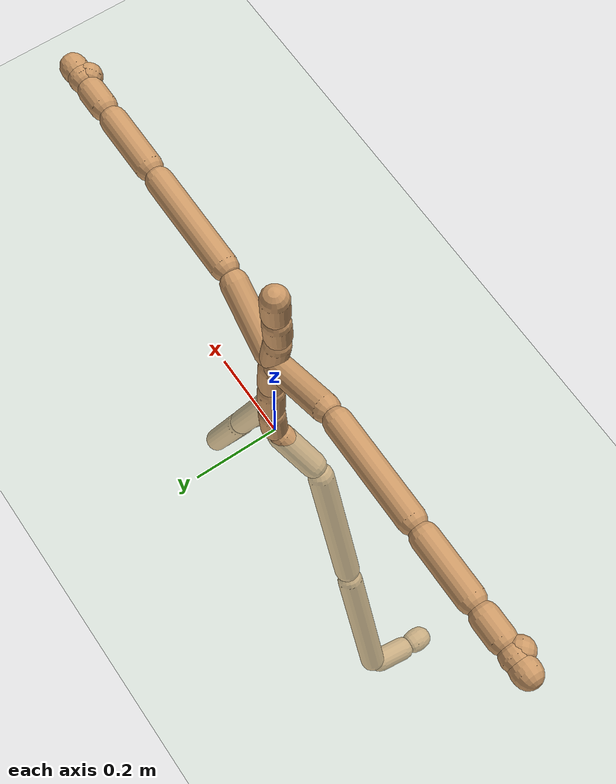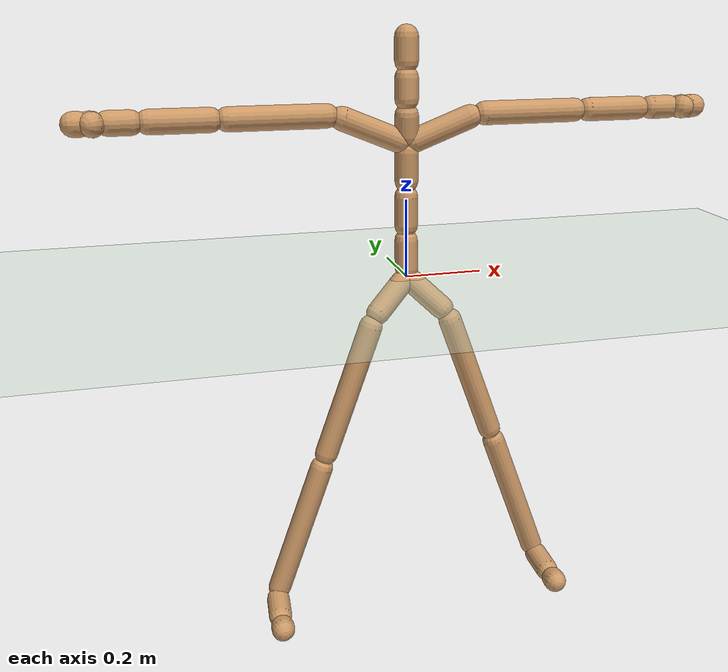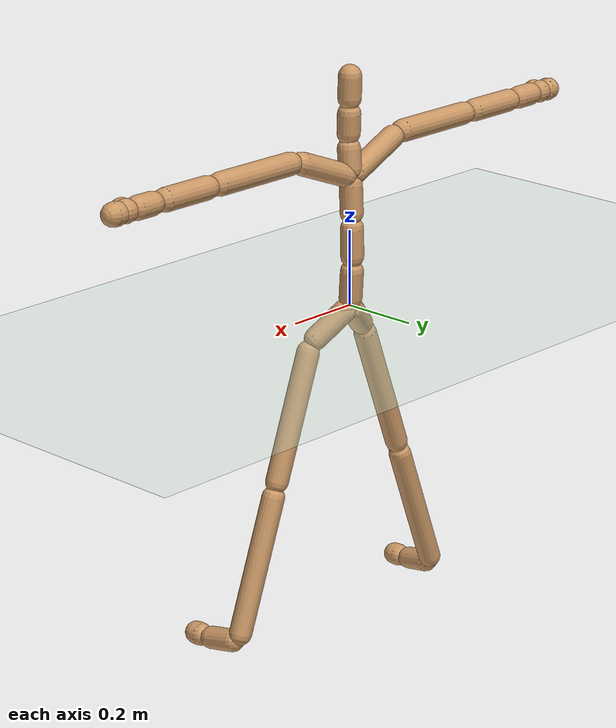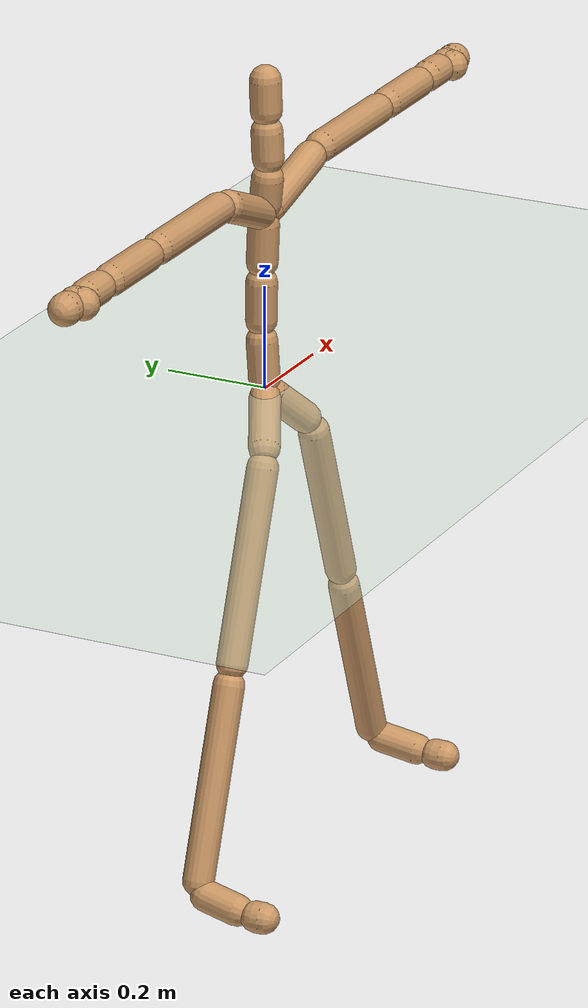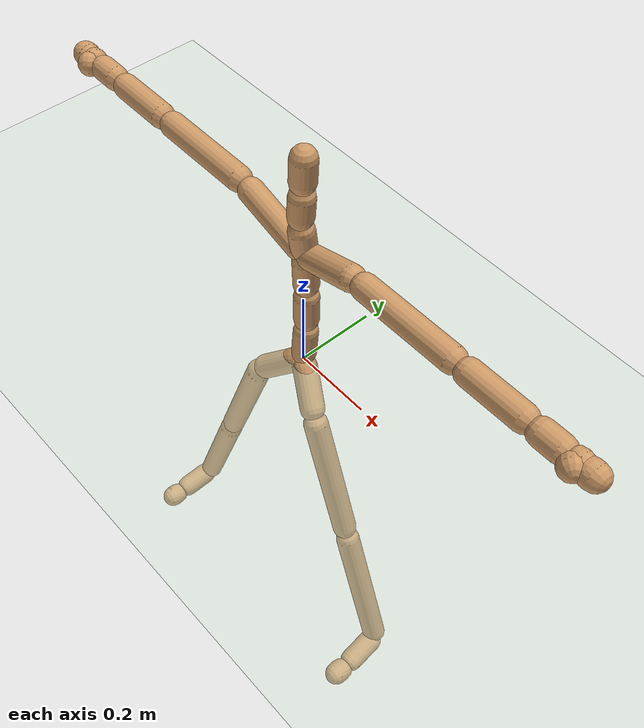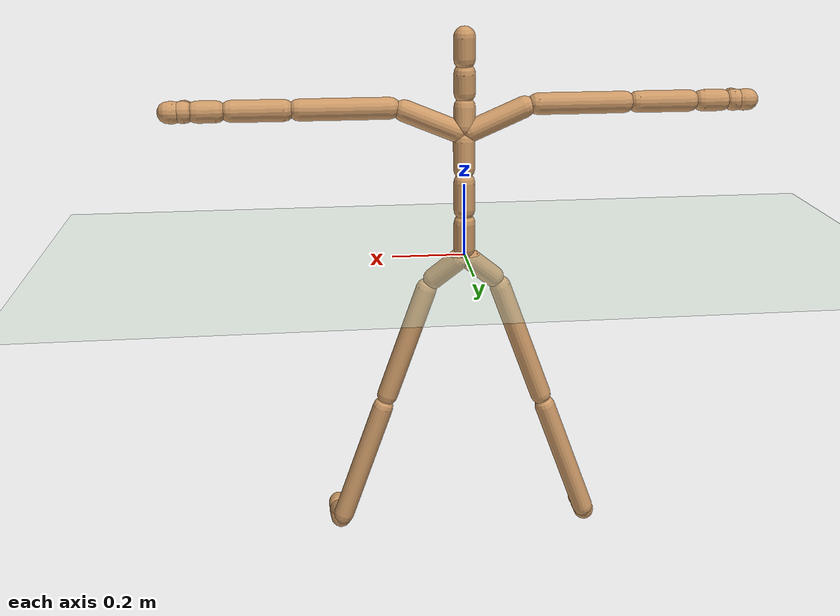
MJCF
<mujoco model="humanoid">
  <compiler angle="degree" inertiafromgeom="true"/>
  <default>
    <joint damping="1" limited="true"/>
    <geom conaffinity="1" condim="1" contype="1" margin="0.001" material="geom" rgba="0.8 0.6 .4 1"/>
    <motor ctrllimited="true" ctrlrange="-.4 .4"/>
  </default>
  <option integrator="RK4" iterations="50" solver="PGS" timestep="0.003"/>
  <asset>
    <texture builtin="gradient" height="100" rgb1=".4 .5 .6" rgb2="0 0 0" type="skybox" width="100"/>
    <texture builtin="flat" height="1278" mark="cross" markrgb="1 1 1" name="texgeom" random="0.01" rgb1=".8 .6 .4" rgb2=".8 .6 .4" type="cube" width="127"/>
    <texture builtin="checker" height="100" name="texplane" rgb1="0 0 0" rgb2=".8 .8 .8" type="2d" width="100"/>
    <material name="MatPlane" reflectance="0.5" shininess="1" specular="1" texrepeat="60 60" texture="texplane"/>
    <material name="geom" texture="texgeom" texuniform="true"/>
  </asset>
  <worldbody>
    <light cutoff="100" diffuse="1 1 1" dir="-0 0 -1.3" directional="true" exponent="1" pos="0 0 1.3" specular=".1 .1 .1"/>
    <geom condim="3" friction="1 .1 .1" material="MatPlane" name="floor" pos="0 0 0" rgba=".8 .9 .8 1" size="20 20 0.125" type="plane"/>
    <body end="0.0000 -0.0000 0.0000" name="root">
      <joint armature="0" damping="0" limited="false" name="root" pos="0.0000 -0.0000 0.0000" stiffness="0" type="free"/>
      <body end="0.0963 -0.0494 -0.0918" name="lhipjoint">
        <geom fromto="0.0136 -0.0070 -0.0129 0.0827 -0.0425 -0.0789" size="0.03" type="capsule"/>
        <body end="0.2274 -0.0494 -0.4521" name="lfemur">
          <joint armature="0.01" axis="0.0000 -1.0000 0.0000" damping="5" limited="true" name="lfemur_z" pos="0.0963 -0.0494 -0.0918" range="-60.0000 70.0000" stiffness="10" type="hinge"/>
          <joint armature="0.01" axis="-0.3420 -0.0000 0.9397" damping="5" limited="true" name="lfemur_y" pos="0.0963 -0.0494 -0.0918" range="-70.0000 70.0000" stiffness="10" type="hinge"/>
          <joint armature="0.01" axis="0.9397 0.0000 0.3420" damping="5" limited="true" name="lfemur_x" pos="0.0963 -0.0494 -0.0918" range="-160.0000 20.0000" stiffness="10" type="hinge"/>
          <geom fromto="0.1031 -0.0494 -0.1106 0.2206 -0.0494 -0.4333" size="0.03" type="capsule"/>
          <body end="0.3657 -0.0494 -0.8321" name="ltibia">
            <joint armature="0.01" axis="0.9397 0.0000 0.3420" damping="5" limited="true" name="ltibia_x" pos="0.2274 -0.0494 -0.4521" range="-10.0000 170.0000" stiffness="10" type="hinge"/>
            <geom fromto="0.2343 -0.0494 -0.4709 0.3589 -0.0494 -0.8133" size="0.03" type="capsule"/>
            <body end="0.3731 -0.1606 -0.8523" name="lfoot">
              <joint armature="0.01" axis="-0.3420 -0.0000 0.9397" damping="5" limited="true" name="lfoot_z" pos="0.3657 -0.0494 -0.8321" range="-70.0000 20.0000" stiffness="10" type="hinge"/>
              <joint armature="0.01" axis="0.9397 0.0000 0.3420" damping="5" limited="true" name="lfoot_x" pos="0.3657 -0.0494 -0.8321" range="-45.0000 90.0000" stiffness="10" type="hinge"/>
              <geom fromto="0.3670 -0.0691 -0.8356 0.3718 -0.1410 -0.8487" size="0.03" type="capsule"/>
              <body end="0.3731 -0.2178 -0.8523" name="ltoes">
                <joint armature="0.01" axis="0.9397 0.0000 0.3420" damping="5" limited="true" name="ltoes_x" pos="0.3731 -0.1606 -0.8523" range="-90.0000 20.0000" stiffness="10" type="hinge"/>
                <geom fromto="0.3731 -0.1806 -0.8523 0.3731 -0.1978 -0.8523" size="0.03" type="capsule"/>
              </body>
            </body>
          </body>
        </body>
      </body>
      <body end="-0.1019 -0.0494 -0.0918" name="rhipjoint">
        <geom fromto="-0.0140 -0.0068 -0.0126 -0.0880 -0.0427 -0.0792" size="0.03" type="capsule"/>
        <body end="-0.2404 -0.0494 -0.4723" name="rfemur">
          <joint armature="0.01" axis="0.0000 -1.0000 -0.0000" damping="5" limited="true" name="rfemur_z" pos="-0.1019 -0.0494 -0.0918" range="-70.0000 60.0000" stiffness="10" type="hinge"/>
          <joint armature="0.01" axis="0.3420 -0.0000 0.9397" damping="5" limited="true" name="rfemur_y" pos="-0.1019 -0.0494 -0.0918" range="-70.0000 70.0000" stiffness="10" type="hinge"/>
          <joint armature="0.01" axis="0.9397 0.0000 -0.3420" damping="5" limited="true" name="rfemur_x" pos="-0.1019 -0.0494 -0.0918" range="-160.0000 20.0000" stiffness="10" type="hinge"/>
          <geom fromto="-0.1088 -0.0494 -0.1106 -0.2336 -0.0494 -0.4535" size="0.03" type="capsule"/>
          <body end="-0.3792 -0.0494 -0.8536" name="rtibia">
            <joint armature="0.01" axis="0.9397 0.0000 -0.3420" damping="5" limited="true" name="rtibia_x" pos="-0.2404 -0.0494 -0.4723" range="-10.0000 170.0000" stiffness="10" type="hinge"/>
            <geom fromto="-0.2473 -0.0494 -0.4911 -0.3724 -0.0494 -0.8348" size="0.03" type="capsule"/>
            <body end="-0.3870 -0.1558 -0.8750" name="rfoot">
              <joint armature="0.01" axis="0.3420 -0.0000 0.9397" damping="5" limited="true" name="rfoot_z" pos="-0.3792 -0.0494 -0.8536" range="-20.0000 70.0000" stiffness="10" type="hinge"/>
              <joint armature="0.01" axis="0.9397 -0.0000 -0.3420" damping="5" limited="true" name="rfoot_x" pos="-0.3792 -0.0494 -0.8536" range="-45.0000 90.0000" stiffness="10" type="hinge"/>
              <geom fromto="-0.3806 -0.0690 -0.8575 -0.3856 -0.1363 -0.8710" size="0.03" type="capsule"/>
              <body end="-0.3870 -0.2107 -0.8750" name="rtoes">
                <joint armature="0.01" axis="0.9397 -0.0000 -0.3420" damping="5" limited="true" name="rtoes_x" pos="-0.3870 -0.1558 -0.8750" range="-90.0000 20.0000" stiffness="10" type="hinge"/>
                <geom fromto="-0.3870 -0.1758 -0.8750 -0.3870 -0.1907 -0.8750" size="0.03" type="capsule"/>
              </body>
            </body>
          </body>
        </body>
      </body>
      <body end="0.0006 0.0081 0.1132" name="lowerback">
        <joint armature="0.01" axis="0.0000 -1.0000 0.0000" damping="5" limited="true" name="lowerback_z" pos="0.0000 -0.0000 0.0000" range="-30.0000 30.0000" stiffness="10" type="hinge"/>
        <joint armature="0.01" axis="0.0000 -0.0000 1.0000" damping="5" limited="true" name="lowerback_y" pos="0.0000 -0.0000 0.0000" range="-30.0000 30.0000" stiffness="10" type="hinge"/>
        <joint armature="0.01" axis="1.0000 0.0000 0.0000" damping="5" limited="true" name="lowerback_x" pos="0.0000 -0.0000 0.0000" range="-20.0000 45.0000" stiffness="10" type="hinge"/>
        <geom fromto="0.0001 0.0014 0.0199 0.0005 0.0066 0.0933" size="0.03" type="capsule"/>
        <body end="0.0011 0.0071 0.2268" name="upperback">
          <joint armature="0.01" axis="0.0000 -1.0000 0.0000" damping="5" limited="true" name="upperback_z" pos="0.0006 0.0081 0.1132" range="-30.0000 30.0000" stiffness="10" type="hinge"/>
          <joint armature="0.01" axis="0.0000 -0.0000 1.0000" damping="5" limited="true" name="upperback_y" pos="0.0006 0.0081 0.1132" range="-30.0000 30.0000" stiffness="10" type="hinge"/>
          <joint armature="0.01" axis="1.0000 0.0000 0.0000" damping="5" limited="true" name="upperback_x" pos="0.0006 0.0081 0.1132" range="-20.0000 45.0000" stiffness="10" type="hinge"/>
          <geom fromto="0.0007 0.0079 0.1332 0.0010 0.0073 0.2068" size="0.03" type="capsule"/>
          <body end="0.0010 0.0024 0.3407" name="thorax">
            <joint armature="0.01" axis="0.0000 -1.0000 0.0000" damping="5" limited="true" name="thorax_z" pos="0.0011 0.0071 0.2268" range="-30.0000 30.0000" stiffness="10" type="hinge"/>
            <joint armature="0.01" axis="0.0000 -0.0000 1.0000" damping="5" limited="true" name="thorax_y" pos="0.0011 0.0071 0.2268" range="-30.0000 30.0000" stiffness="10" type="hinge"/>
            <joint armature="0.01" axis="1.0000 0.0000 0.0000" damping="5" limited="true" name="thorax_x" pos="0.0011 0.0071 0.2268" range="-20.0000 45.0000" stiffness="10" type="hinge"/>
            <geom fromto="0.0011 0.0063 0.2468 0.0010 0.0033 0.3207" size="0.03" type="capsule"/>
            <body end="-0.0023 -0.0083 0.4312" name="lowerneck">
              <joint armature="0.01" axis="0.0000 -1.0000 0.0000" damping="5" limited="true" name="lowerneck_z" pos="0.0010 0.0024 0.3407" range="-30.0000 30.0000" stiffness="10" type="hinge"/>
              <joint armature="0.01" axis="0.0000 -0.0000 1.0000" damping="5" limited="true" name="lowerneck_y" pos="0.0010 0.0024 0.3407" range="-30.0000 30.0000" stiffness="10" type="hinge"/>
              <joint armature="0.01" axis="1.0000 0.0000 0.0000" damping="5" limited="true" name="lowerneck_x" pos="0.0010 0.0024 0.3407" range="-20.0000 45.0000" stiffness="10" type="hinge"/>
              <geom fromto="0.0003 0.0001 0.3606 -0.0015 -0.0059 0.4114" size="0.03" type="capsule"/>
              <body end="-0.0013 -0.0038 0.5212" name="upperneck">
                <joint armature="0.01" axis="0.0000 -1.0000 0.0000" damping="5" limited="true" name="upperneck_z" pos="-0.0023 -0.0083 0.4312" range="-30.0000 30.0000" stiffness="10" type="hinge"/>
                <joint armature="0.01" axis="0.0000 -0.0000 1.0000" damping="5" limited="true" name="upperneck_y" pos="-0.0023 -0.0083 0.4312" range="-30.0000 30.0000" stiffness="10" type="hinge"/>
                <joint armature="0.01" axis="1.0000 0.0000 0.0000" damping="5" limited="true" name="upperneck_x" pos="-0.0023 -0.0083 0.4312" range="-20.0000 45.0000" stiffness="10" type="hinge"/>
                <geom fromto="-0.0020 -0.0073 0.4512 -0.0015 -0.0048 0.5012" size="0.03" type="capsule"/>
                <body end="-0.0006 -0.0008 0.6176" name="head">
                  <joint armature="0.01" axis="0.0000 -1.0000 0.0000" damping="5" limited="true" name="head_z" pos="-0.0013 -0.0038 0.5212" range="-30.0000 30.0000" stiffness="10" type="hinge"/>
                  <joint armature="0.01" axis="0.0000 -0.0000 1.0000" damping="5" limited="true" name="head_y" pos="-0.0013 -0.0038 0.5212" range="-30.0000 30.0000" stiffness="10" type="hinge"/>
                  <joint armature="0.01" axis="1.0000 0.0000 0.0000" damping="5" limited="true" name="head_x" pos="-0.0013 -0.0038 0.5212" range="-20.0000 45.0000" stiffness="10" type="hinge"/>
                  <geom fromto="-0.0011 -0.0031 0.5412 -0.0007 -0.0014 0.5976" size="0.03" type="capsule"/>
                </body>
              </body>
            </body>
            <body end="0.1790 -0.0149 0.4121" name="lclavicle">
              <joint armature="0.01" axis="0.0000 -1.0000 0.0000" damping="5" limited="true" name="lclavicle_z" pos="0.0010 0.0024 0.3407" range="0.0000 20.0000" stiffness="10" type="hinge"/>
              <joint armature="0.01" axis="0.0000 -0.0000 1.0000" damping="5" limited="true" name="lclavicle_y" pos="0.0010 0.0024 0.3407" range="-20.0000 10.0000" stiffness="10" type="hinge"/>
              <geom fromto="0.0195 0.0006 0.3481 0.1605 -0.0131 0.4047" size="0.03" type="capsule"/>
              <body end="0.4599 -0.0149 0.4121" name="lhumerus">
                <joint armature="0.01" axis="-0.0000 0.8660 -0.5000" damping="5" limited="true" name="lhumerus_z" pos="0.1790 -0.0149 0.4121" range="-90.0000 90.0000" stiffness="10" type="hinge"/>
                <joint armature="0.01" axis="-1.0000 -0.0000 -0.0000" damping="5" limited="true" name="lhumerus_y" pos="0.1790 -0.0149 0.4121" range="-90.0000 90.0000" stiffness="10" type="hinge"/>
                <joint armature="0.01" axis="0.0000 -0.5000 -0.8660" damping="5" limited="true" name="lhumerus_x" pos="0.1790 -0.0149 0.4121" range="-60.0000 90.0000" stiffness="10" type="hinge"/>
                <geom fromto="0.1990 -0.0149 0.4121 0.4399 -0.0149 0.4121" size="0.03" type="capsule"/>
                <body end="0.6374 -0.0149 0.4121" name="lradius">
                  <joint armature="0.01" axis="0.0000 -0.5000 -0.8660" damping="5" limited="true" name="lradius_x" pos="0.4599 -0.0149 0.4121" range="-10.0000 170.0000" stiffness="10" type="hinge"/>
                  <geom fromto="0.4799 -0.0149 0.4121 0.6174 -0.0149 0.4121" size="0.03" type="capsule"/>
                  <body end="0.7261 -0.0149 0.4121" name="lwrist">
                    <joint armature="0.01" axis="-1.0000 -0.0000 0.0000" damping="5" limited="true" name="lwrist_y" pos="0.6374 -0.0149 0.4121" range="-180.0000 0.0000" stiffness="10" type="hinge"/>
                    <geom fromto="0.6574 -0.0149 0.4121 0.7061 -0.0149 0.4121" size="0.03" type="capsule"/>
                    <body end="0.7596 -0.0149 0.4121" name="lhand">
                      <joint armature="0.01" axis="0.0000 -0.0000 1.0000" damping="5" limited="true" name="lhand_z" pos="0.7261 -0.0149 0.4121" range="-45.0000 45.0000" stiffness="10" type="hinge"/>
                      <joint armature="0.01" axis="0.0000 1.0000 0.0000" damping="5" limited="true" name="lhand_x" pos="0.7261 -0.0149 0.4121" range="-90.0000 90.0000" stiffness="10" type="hinge"/>
                      <geom fromto="0.7461 -0.0149 0.4121 0.7396 -0.0149 0.4121" size="0.03" type="capsule"/>
                      <body end="0.7866 -0.0149 0.4121" name="lfingers">
                        <joint armature="0.01" axis="0.0000 1.0000 0.0000" damping="5" limited="true" name="lfingers_x" pos="0.7596 -0.0149 0.4121" range="0.0000 90.0000" stiffness="10" type="hinge"/>
                        <geom fromto="0.7796 -0.0149 0.4121 0.7666 -0.0149 0.4121" size="0.03" type="capsule"/>
                      </body>
                    </body>
                    <body end="0.7535 -0.0423 0.4121" name="lthumb">
                      <joint armature="0.01" axis="-0.0000 -0.0000 1.0000" damping="5" limited="true" name="lthumb_z" pos="0.7261 -0.0149 0.4121" range="-45.0000 45.0000" stiffness="10" type="hinge"/>
                      <joint armature="0.01" axis="0.7071 0.7071 0.0000" damping="5" limited="true" name="lthumb_x" pos="0.7261 -0.0149 0.4121" range="-45.0000 45.0000" stiffness="10" type="hinge"/>
                      <geom fromto="0.7403 -0.0290 0.4121 0.7394 -0.0282 0.4121" size="0.03" type="capsule"/>
                    </body>
                  </body>
                </body>
              </body>
            </body>
            <body end="-0.1827 -0.0083 0.4172" name="rclavicle">
              <joint armature="0.01" axis="0.0000 -1.0000 0.0000" damping="5" limited="true" name="rclavicle_z" pos="0.0010 0.0024 0.3407" range="-20.0000 0.0000" stiffness="10" type="hinge"/>
              <joint armature="0.01" axis="0.0000 -0.0000 1.0000" damping="5" limited="true" name="rclavicle_y" pos="0.0010 0.0024 0.3407" range="-10.0000 20.0000" stiffness="10" type="hinge"/>
              <geom fromto="-0.0174 0.0014 0.3484 -0.1643 -0.0072 0.4096" size="0.03" type="capsule"/>
              <body end="-0.4596 -0.0083 0.4172" name="rhumerus">
                <joint armature="0.01" axis="0.0000 0.8660 -0.5000" damping="5" limited="true" name="rhumerus_z" pos="-0.1827 -0.0083 0.4172" range="-90.0000 90.0000" stiffness="10" type="hinge"/>
                <joint armature="0.01" axis="1.0000 -0.0000 -0.0000" damping="5" limited="true" name="rhumerus_y" pos="-0.1827 -0.0083 0.4172" range="-90.0000 90.0000" stiffness="10" type="hinge"/>
                <joint armature="0.01" axis="0.0000 0.5000 0.8660" damping="5" limited="true" name="rhumerus_x" pos="-0.1827 -0.0083 0.4172" range="-90.0000 60.0000" stiffness="10" type="hinge"/>
                <geom fromto="-0.2027 -0.0083 0.4172 -0.4396 -0.0083 0.4172" size="0.03" type="capsule"/>
                <body end="-0.6411 -0.0083 0.4173" name="rradius">
                  <joint armature="0.01" axis="0.0000 0.5000 0.8660" damping="5" limited="true" name="rradius_x" pos="-0.4596 -0.0083 0.4172" range="-10.0000 170.0000" stiffness="10" type="hinge"/>
                  <geom fromto="-0.4796 -0.0083 0.4172 -0.6211 -0.0083 0.4173" size="0.03" type="capsule"/>
                  <body end="-0.7319 -0.0083 0.4173" name="rwrist">
                    <joint armature="0.01" axis="1.0000 -0.0000 0.0000" damping="5" limited="true" name="rwrist_y" pos="-0.6411 -0.0083 0.4173" range="-180.0000 0.0000" stiffness="10" type="hinge"/>
                    <geom fromto="-0.6611 -0.0083 0.4173 -0.7119 -0.0083 0.4173" size="0.03" type="capsule"/>
                    <body end="-0.7671 -0.0083 0.4173" name="rhand">
                      <joint armature="0.01" axis="-0.0000 -0.0000 1.0000" damping="5" limited="true" name="rhand_z" pos="-0.7319 -0.0083 0.4173" range="-45.0000 45.0000" stiffness="10" type="hinge"/>
                      <joint armature="0.01" axis="0.0000 -1.0000 -0.0000" damping="5" limited="true" name="rhand_x" pos="-0.7319 -0.0083 0.4173" range="-90.0000 90.0000" stiffness="10" type="hinge"/>
                      <geom fromto="-0.7519 -0.0083 0.4173 -0.7471 -0.0083 0.4173" size="0.03" type="capsule"/>
                      <body end="-0.7954 -0.0083 0.4173" name="rfingers">
                        <joint armature="0.01" axis="0.0000 -1.0000 -0.0000" damping="5" limited="true" name="rfingers_x" pos="-0.7671 -0.0083 0.4173" range="0.0000 90.0000" stiffness="10" type="hinge"/>
                        <geom fromto="-0.7871 -0.0083 0.4173 -0.7754 -0.0083 0.4173" size="0.03" type="capsule"/>
                      </body>
                    </body>
                    <body end="-0.7607 -0.0371 0.4173" name="rthumb">
                      <joint armature="0.01" axis="0.0000 -0.0000 1.0000" damping="5" limited="true" name="rthumb_z" pos="-0.7319 -0.0083 0.4173" range="-45.0000 45.0000" stiffness="10" type="hinge"/>
                      <joint armature="0.01" axis="0.7071 -0.7071 -0.0000" damping="5" limited="true" name="rthumb_x" pos="-0.7319 -0.0083 0.4173" range="-45.0000 45.0000" stiffness="10" type="hinge"/>
                      <geom fromto="-0.7460 -0.0224 0.4173 -0.7465 -0.0229 0.4173" size="0.03" type="capsule"/>
                    </body>
                  </body>
                </body>
              </body>
            </body>
          </body>
        </body>
      </body>
    </body>
  </worldbody>
  <actuator>
    <motor gear="100" joint="lfemur_x" name="lfemur_x"/>
    <motor gear="100" joint="lfemur_y" name="lfemur_y"/>
    <motor gear="100" joint="lfemur_z" name="lfemur_z"/>
    <motor gear="100" joint="ltibia_x" name="ltibia_x"/>
    <motor gear="100" joint="lfoot_x" name="lfoot_x"/>
    <motor gear="100" joint="lfoot_z" name="lfoot_z"/>
    <motor gear="100" joint="ltoes_x" name="ltoes_x"/>
    <motor gear="100" joint="rfemur_x" name="rfemur_x"/>
    <motor gear="100" joint="rfemur_y" name="rfemur_y"/>
    <motor gear="100" joint="rfemur_z" name="rfemur_z"/>
    <motor gear="100" joint="rtibia_x" name="rtibia_x"/>
    <motor gear="100" joint="rfoot_x" name="rfoot_x"/>
    <motor gear="100" joint="rfoot_z" name="rfoot_z"/>
    <motor gear="100" joint="rtoes_x" name="rtoes_x"/>
    <motor gear="100" joint="lowerback_x" name="lowerback_x"/>
    <motor gear="100" joint="lowerback_y" name="lowerback_y"/>
    <motor gear="100" joint="lowerback_z" name="lowerback_z"/>
    <motor gear="100" joint="upperback_x" name="upperback_x"/>
    <motor gear="100" joint="upperback_y" name="upperback_y"/>
    <motor gear="100" joint="upperback_z" name="upperback_z"/>
    <motor gear="100" joint="thorax_x" name="thorax_x"/>
    <motor gear="100" joint="thorax_y" name="thorax_y"/>
    <motor gear="100" joint="thorax_z" name="thorax_z"/>
    <motor gear="100" joint="lowerneck_x" name="lowerneck_x"/>
    <motor gear="100" joint="lowerneck_y" name="lowerneck_y"/>
    <motor gear="100" joint="lowerneck_z" name="lowerneck_z"/>
    <motor gear="100" joint="upperneck_x" name="upperneck_x"/>
    <motor gear="100" joint="upperneck_y" name="upperneck_y"/>
    <motor gear="100" joint="upperneck_z" name="upperneck_z"/>
    <motor gear="100" joint="head_x" name="head_x"/>
    <motor gear="100" joint="head_y" name="head_y"/>
    <motor gear="100" joint="head_z" name="head_z"/>
    <motor gear="100" joint="lclavicle_y" name="lclavicle_y"/>
    <motor gear="100" joint="lclavicle_z" name="lclavicle_z"/>
    <motor gear="100" joint="lhumerus_x" name="lhumerus_x"/>
    <motor gear="100" joint="lhumerus_y" name="lhumerus_y"/>
    <motor gear="100" joint="lhumerus_z" name="lhumerus_z"/>
    <motor gear="100" joint="lradius_x" name="lradius_x"/>
    <motor gear="100" joint="lwrist_y" name="lwrist_y"/>
    <motor gear="100" joint="lhand_x" name="lhand_x"/>
    <motor gear="100" joint="lhand_z" name="lhand_z"/>
    <motor gear="100" joint="lfingers_x" name="lfingers_x"/>
    <motor gear="100" joint="lthumb_x" name="lthumb_x"/>
    <motor gear="100" joint="lthumb_z" name="lthumb_z"/>
    <motor gear="100" joint="rclavicle_y" name="rclavicle_y"/>
    <motor gear="100" joint="rclavicle_z" name="rclavicle_z"/>
    <motor gear="100" joint="rhumerus_x" name="rhumerus_x"/>
    <motor gear="100" joint="rhumerus_y" name="rhumerus_y"/>
    <motor gear="100" joint="rhumerus_z" name="rhumerus_z"/>
    <motor gear="100" joint="rradius_x" name="rradius_x"/>
    <motor gear="100" joint="rwrist_y" name="rwrist_y"/>
    <motor gear="100" joint="rhand_x" name="rhand_x"/>
    <motor gear="100" joint="rhand_z" name="rhand_z"/>
    <motor gear="100" joint="rfingers_x" name="rfingers_x"/>
    <motor gear="100" joint="rthumb_x" name="rthumb_x"/>
    <motor gear="100" joint="rthumb_z" name="rthumb_z"/>
  </actuator>
</mujoco>
